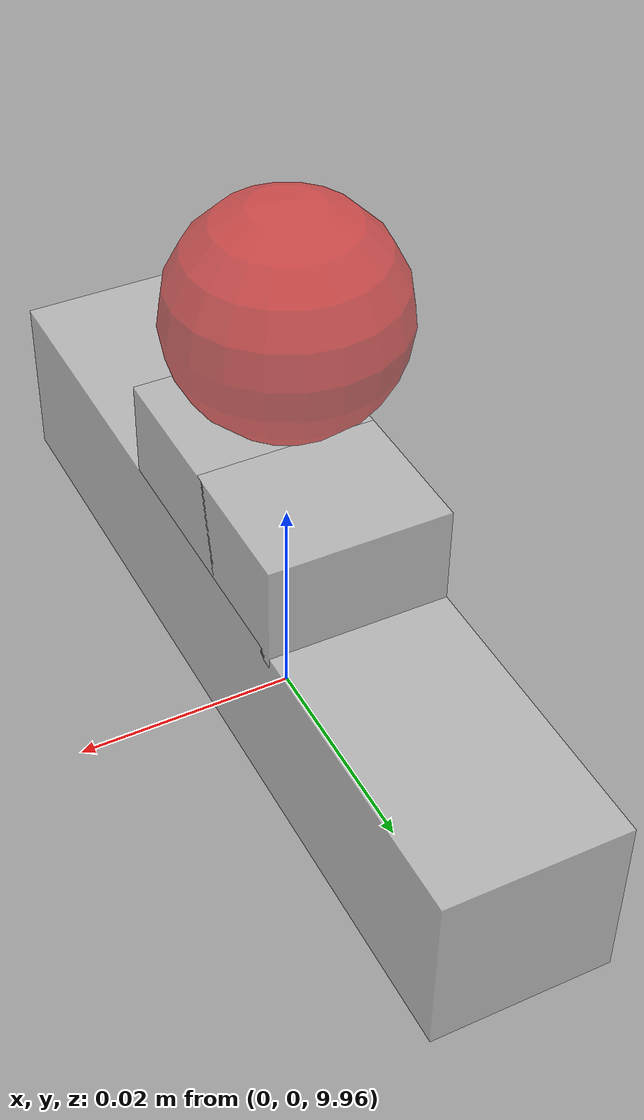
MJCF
<mujoco model="gripper_probe">
  <compiler angle="radian" meshdir="assets/"/>

  <asset>
    <material name="probe_metal" rgba="0.8 0.8 0.8 0.5"/>
  </asset>

  <worldbody>
    <body name="gripper_probe" pos="0 0 10" gravcomp="1">
      <freejoint name="gripper_probe_joint"/>
      <inertial pos="0 0 0" mass="0.3" diaginertia="1e-04 1e-04 1e-04"/>
      <site name="probe_grasp" pos="0 0 0" size="0.01" rgba="1 0 0 0.5"/>
      <!-- Base pad behind fingers -->
      <geom type="box" size="0.008 0.04 0.008" pos="0 0 -0.03" material="probe_metal" contype="0" conaffinity="15"/>
      <!-- Finger A pad only (open position) -->
      <body name="gripper_probe_finger_a" pos="0 0 0.01" quat="1.89468e-08 1.89469e-08 0.707108 0.707105">
        <inertial pos="0 0 0" mass="0.02" diaginertia="1e-05 1e-05 1e-05"/>
        <joint name="gripper_probe_joint_a" type="slide" axis="0 0 -1" range="0 0.04"/>
        <geom type="box" size="0.008 0.005 0.008" pos="0 -0.028 -0.005" material="probe_metal" contype="0" conaffinity="15"/>
      </body>
      <!-- Finger B pad only (open position) -->
      <body name="gripper_probe_finger_b" pos="0 0 0.01" quat="1.89468e-08 -1.89469e-08 -0.707108 0.707105">
        <inertial pos="0 0 0" mass="0.02" diaginertia="1e-05 1e-05 1e-05"/>
        <joint name="gripper_probe_joint_b" type="slide" axis="0 0 1" range="-0.04 0"/>
        <geom type="box" size="0.008 0.005 0.008" pos="0 0.028 -0.005" material="probe_metal" contype="0" conaffinity="15"/>
      </body>
    </body>
  </worldbody>

  <keyframe>
    <key name="open" qpos="0 0 10 1 0 0 0 0.04 -0.04"/>
  </keyframe>
</mujoco>
